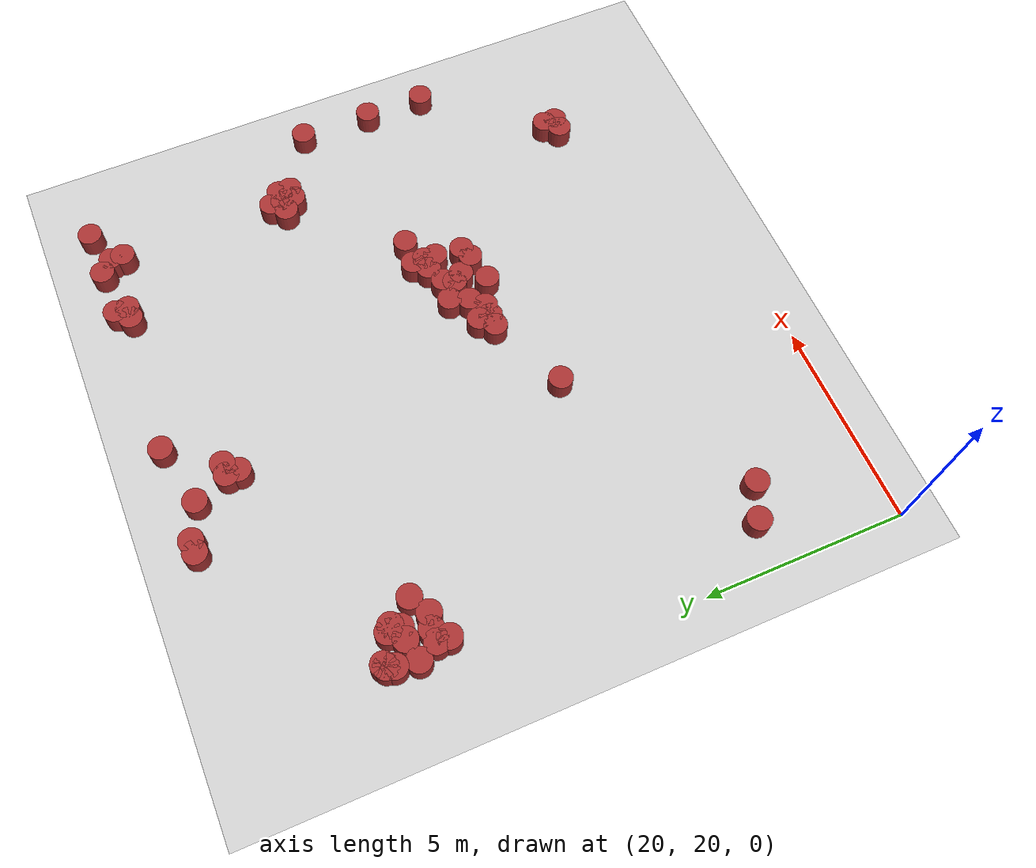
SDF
<sdf version="1.6">
 <world name="default">
  <model name="ground_plane">
   <static>1</static>
   <link name="link">
    <collision name="collision">
     <geometry><plane><normal>0 0 1</normal><size>100 100</size></plane></geometry>
     <surface><friction><ode><mu>100</mu><mu2>50</mu2></ode></friction></surface>
    </collision>
    <visual name="visual">
     <cast_shadows>0</cast_shadows>
     <geometry><plane><normal>0 0 1</normal><size>100 100</size></plane></geometry>
     <material>
      <script><uri>file://media/materials/scripts/gazebo.material</uri><name>Gazebo/Grey</name></script>
     </material>
    </visual>
   </link>
  </model>
  <model name="unit_cylinder_172">
   <static>1</static>
   <pose>22.4428 31.086 0 0 -0 0</pose>
   <link name="link">
    <inertial>
     <mass>1</mass>
     <inertia><ixx>0.145833</ixx><ixy>0</ixy><ixz>0</ixz><iyy>0.145833</iyy><iyz>0</iyz><izz>0.125</izz></inertia>
    </inertial>
    <collision name="collision">
     <geometry><cylinder><radius>0.3</radius><length>1</length></cylinder></geometry>
    </collision>
    <visual name="visual">
     <geometry><cylinder><radius>0.3</radius><length>1</length></cylinder></geometry>
     <material><ambient>0.648 0.192 0.192 1</ambient><diffuse>0.648 0.192 0.192 1</diffuse></material>
     <material>
      <script><name>Gazebo/Grey</name><uri>file://media/materials/scripts/gazebo.material</uri></script>
     </material>
    </visual>
   </link>
  </model>
  <model name="unit_cylinder_175">
   <static>1</static>
   <pose>26.3626 34.7436 0 0 -0 0</pose>
   <link name="link">
    <inertial>
     <mass>1</mass>
     <inertia><ixx>0.145833</ixx><ixy>0</ixy><ixz>0</ixz><iyy>0.145833</iyy><iyz>0</iyz><izz>0.125</izz></inertia>
    </inertial>
    <collision name="collision">
     <geometry><cylinder><radius>0.3</radius><length>1</length></cylinder></geometry>
    </collision>
    <visual name="visual">
     <geometry><cylinder><radius>0.3</radius><length>1</length></cylinder></geometry>
     <material><ambient>0.648 0.192 0.192 1</ambient><diffuse>0.648 0.192 0.192 1</diffuse></material>
     <material>
      <script><name>Gazebo/Grey</name><uri>file://media/materials/scripts/gazebo.material</uri></script>
     </material>
    </visual>
   </link>
  </model>
  <model name="unit_cylinder_176">
   <static>1</static>
   <pose>21.0748 23.1889 0 0 -0 0</pose>
   <link name="link">
    <inertial>
     <mass>1</mass>
     <inertia><ixx>0.145833</ixx><ixy>0</ixy><ixz>0</ixz><iyy>0.145833</iyy><iyz>0</iyz><izz>0.125</izz></inertia>
    </inertial>
    <collision name="collision">
     <geometry><cylinder><radius>0.3</radius><length>1</length></cylinder></geometry>
    </collision>
    <visual name="visual">
     <geometry><cylinder><radius>0.3</radius><length>1</length></cylinder></geometry>
     <material><ambient>0.648 0.192 0.192 1</ambient><diffuse>0.648 0.192 0.192 1</diffuse></material>
     <material>
      <script><name>Gazebo/Grey</name><uri>file://media/materials/scripts/gazebo.material</uri></script>
     </material>
    </visual>
   </link>
  </model>
  <model name="unit_cylinder_276">
   <static>1</static>
   <pose>21.3 30.6 0 0 -0 0</pose>
   <link name="link">
    <inertial>
     <mass>1</mass>
     <inertia><ixx>0.145833</ixx><ixy>0</ixy><ixz>0</ixz><iyy>0.145833</iyy><iyz>0</iyz><izz>0.125</izz></inertia>
    </inertial>
    <collision name="collision">
     <geometry><cylinder><radius>0.3</radius><length>1</length></cylinder></geometry>
    </collision>
    <visual name="visual">
     <geometry><cylinder><radius>0.3</radius><length>1</length></cylinder></geometry>
     <material><ambient>0.648 0.192 0.192 1</ambient><diffuse>0.648 0.192 0.192 1</diffuse></material>
     <material>
      <script><name>Gazebo/Grey</name><uri>file://media/materials/scripts/gazebo.material</uri></script>
     </material>
    </visual>
   </link>
  </model>
  <model name="unit_cylinder_277">
   <static>1</static>
   <pose>21.3 30.9 0 0 -0 0</pose>
   <link name="link">
    <inertial>
     <mass>1</mass>
     <inertia><ixx>0.145833</ixx><ixy>0</ixy><ixz>0</ixz><iyy>0.145833</iyy><iyz>0</iyz><izz>0.125</izz></inertia>
    </inertial>
    <collision name="collision">
     <geometry><cylinder><radius>0.3</radius><length>1</length></cylinder></geometry>
    </collision>
    <visual name="visual">
     <geometry><cylinder><radius>0.3</radius><length>1</length></cylinder></geometry>
     <material><ambient>0.648 0.192 0.192 1</ambient><diffuse>0.648 0.192 0.192 1</diffuse></material>
     <material>
      <script><name>Gazebo/Grey</name><uri>file://media/materials/scripts/gazebo.material</uri></script>
     </material>
    </visual>
   </link>
  </model>
  <model name="unit_cylinder_279">
   <static>1</static>
   <pose>21.2164 32.0962 0 0 -0 0</pose>
   <link name="link">
    <inertial>
     <mass>1</mass>
     <inertia><ixx>0.145833</ixx><ixy>0</ixy><ixz>0</ixz><iyy>0.145833</iyy><iyz>0</iyz><izz>0.125</izz></inertia>
    </inertial>
    <collision name="collision">
     <geometry><cylinder><radius>0.3</radius><length>1</length></cylinder></geometry>
    </collision>
    <visual name="visual">
     <geometry><cylinder><radius>0.3</radius><length>1</length></cylinder></geometry>
     <material><ambient>0.648 0.192 0.192 1</ambient><diffuse>0.648 0.192 0.192 1</diffuse></material>
     <material>
      <script><name>Gazebo/Grey</name><uri>file://media/materials/scripts/gazebo.material</uri></script>
     </material>
    </visual>
   </link>
  </model>
  <model name="unit_cylinder_280">
   <static>1</static>
   <pose>21.0788 31.3877 0 0 -0 0</pose>
   <link name="link">
    <inertial>
     <mass>1</mass>
     <inertia><ixx>0.145833</ixx><ixy>0</ixy><ixz>0</ixz><iyy>0.145833</iyy><iyz>0</iyz><izz>0.125</izz></inertia>
    </inertial>
    <collision name="collision">
     <geometry><cylinder><radius>0.3</radius><length>1</length></cylinder></geometry>
    </collision>
    <visual name="visual">
     <geometry><cylinder><radius>0.3</radius><length>1</length></cylinder></geometry>
     <material><ambient>0.648 0.192 0.192 1</ambient><diffuse>0.648 0.192 0.192 1</diffuse></material>
     <material>
      <script><name>Gazebo/Grey</name><uri>file://media/materials/scripts/gazebo.material</uri></script>
     </material>
    </visual>
   </link>
  </model>
  <model name="unit_cylinder_281">
   <static>1</static>
   <pose>21.6 30.9 0 0 -0 0</pose>
   <link name="link">
    <inertial>
     <mass>1</mass>
     <inertia><ixx>0.145833</ixx><ixy>0</ixy><ixz>0</ixz><iyy>0.145833</iyy><iyz>0</iyz><izz>0.125</izz></inertia>
    </inertial>
    <collision name="collision">
     <geometry><cylinder><radius>0.3</radius><length>1</length></cylinder></geometry>
    </collision>
    <visual name="visual">
     <geometry><cylinder><radius>0.3</radius><length>1</length></cylinder></geometry>
     <material><ambient>0.648 0.192 0.192 1</ambient><diffuse>0.648 0.192 0.192 1</diffuse></material>
     <material>
      <script><name>Gazebo/Grey</name><uri>file://media/materials/scripts/gazebo.material</uri></script>
     </material>
    </visual>
   </link>
  </model>
  <model name="unit_cylinder_282">
   <static>1</static>
   <pose>21.6 31.5 0 0 -0 0</pose>
   <link name="link">
    <inertial>
     <mass>1</mass>
     <inertia><ixx>0.145833</ixx><ixy>0</ixy><ixz>0</ixz><iyy>0.145833</iyy><iyz>0</iyz><izz>0.125</izz></inertia>
    </inertial>
    <collision name="collision">
     <geometry><cylinder><radius>0.3</radius><length>1</length></cylinder></geometry>
    </collision>
    <visual name="visual">
     <geometry><cylinder><radius>0.3</radius><length>1</length></cylinder></geometry>
     <material><ambient>0.648 0.192 0.192 1</ambient><diffuse>0.648 0.192 0.192 1</diffuse></material>
     <material>
      <script><name>Gazebo/Grey</name><uri>file://media/materials/scripts/gazebo.material</uri></script>
     </material>
    </visual>
   </link>
  </model>
  <model name="unit_cylinder_284">
   <static>1</static>
   <pose>21.9 22.8 0 0 -0 0</pose>
   <link name="link">
    <inertial>
     <mass>1</mass>
     <inertia><ixx>0.145833</ixx><ixy>0</ixy><ixz>0</ixz><iyy>0.145833</iyy><iyz>0</iyz><izz>0.125</izz></inertia>
    </inertial>
    <collision name="collision">
     <geometry><cylinder><radius>0.3</radius><length>1</length></cylinder></geometry>
    </collision>
    <visual name="visual">
     <geometry><cylinder><radius>0.3</radius><length>1</length></cylinder></geometry>
     <material><ambient>0.648 0.192 0.192 1</ambient><diffuse>0.648 0.192 0.192 1</diffuse></material>
     <material>
      <script><name>Gazebo/Grey</name><uri>file://media/materials/scripts/gazebo.material</uri></script>
     </material>
    </visual>
   </link>
  </model>
  <model name="unit_cylinder_285">
   <static>1</static>
   <pose>21.9562 30.8161 0 0 -0 0</pose>
   <link name="link">
    <inertial>
     <mass>1</mass>
     <inertia><ixx>0.145833</ixx><ixy>0</ixy><ixz>0</ixz><iyy>0.145833</iyy><iyz>0</iyz><izz>0.125</izz></inertia>
    </inertial>
    <collision name="collision">
     <geometry><cylinder><radius>0.3</radius><length>1</length></cylinder></geometry>
    </collision>
    <visual name="visual">
     <geometry><cylinder><radius>0.3</radius><length>1</length></cylinder></geometry>
     <material><ambient>0.648 0.192 0.192 1</ambient><diffuse>0.648 0.192 0.192 1</diffuse></material>
     <material>
      <script><name>Gazebo/Grey</name><uri>file://media/materials/scripts/gazebo.material</uri></script>
     </material>
    </visual>
   </link>
  </model>
  <model name="unit_cylinder_286">
   <static>1</static>
   <pose>21.9 31.5 0 0 -0 0</pose>
   <link name="link">
    <inertial>
     <mass>1</mass>
     <inertia><ixx>0.145833</ixx><ixy>0</ixy><ixz>0</ixz><iyy>0.145833</iyy><iyz>0</iyz><izz>0.125</izz></inertia>
    </inertial>
    <collision name="collision">
     <geometry><cylinder><radius>0.3</radius><length>1</length></cylinder></geometry>
    </collision>
    <visual name="visual">
     <geometry><cylinder><radius>0.3</radius><length>1</length></cylinder></geometry>
     <material><ambient>0.648 0.192 0.192 1</ambient><diffuse>0.648 0.192 0.192 1</diffuse></material>
     <material>
      <script><name>Gazebo/Grey</name><uri>file://media/materials/scripts/gazebo.material</uri></script>
     </material>
    </visual>
   </link>
  </model>
  <model name="unit_cylinder_287">
   <static>1</static>
   <pose>21.9 31.8 0 0 -0 0</pose>
   <link name="link">
    <inertial>
     <mass>1</mass>
     <inertia><ixx>0.145833</ixx><ixy>0</ixy><ixz>0</ixz><iyy>0.145833</iyy><iyz>0</iyz><izz>0.125</izz></inertia>
    </inertial>
    <collision name="collision">
     <geometry><cylinder><radius>0.3</radius><length>1</length></cylinder></geometry>
    </collision>
    <visual name="visual">
     <geometry><cylinder><radius>0.3</radius><length>1</length></cylinder></geometry>
     <material><ambient>0.648 0.192 0.192 1</ambient><diffuse>0.648 0.192 0.192 1</diffuse></material>
     <material>
      <script><name>Gazebo/Grey</name><uri>file://media/materials/scripts/gazebo.material</uri></script>
     </material>
    </visual>
   </link>
  </model>
  <model name="unit_cylinder_290">
   <static>1</static>
   <pose>21.2837 32.1368 0 0 -0 0</pose>
   <link name="link">
    <inertial>
     <mass>1</mass>
     <inertia><ixx>0.145833</ixx><ixy>0</ixy><ixz>0</ixz><iyy>0.145833</iyy><iyz>0</iyz><izz>0.125</izz></inertia>
    </inertial>
    <collision name="collision">
     <geometry><cylinder><radius>0.3</radius><length>1</length></cylinder></geometry>
    </collision>
    <visual name="visual">
     <geometry><cylinder><radius>0.3</radius><length>1</length></cylinder></geometry>
     <material><ambient>0.648 0.192 0.192 1</ambient><diffuse>0.648 0.192 0.192 1</diffuse></material>
     <material>
      <script><name>Gazebo/Grey</name><uri>file://media/materials/scripts/gazebo.material</uri></script>
     </material>
    </visual>
   </link>
  </model>
  <model name="unit_cylinder_297">
   <static>1</static>
   <pose>22.0157 31.6974 0 0 -0 0</pose>
   <link name="link">
    <inertial>
     <mass>1</mass>
     <inertia><ixx>0.145833</ixx><ixy>0</ixy><ixz>0</ixz><iyy>0.145833</iyy><iyz>0</iyz><izz>0.125</izz></inertia>
    </inertial>
    <collision name="collision">
     <geometry><cylinder><radius>0.3</radius><length>1</length></cylinder></geometry>
    </collision>
    <visual name="visual">
     <geometry><cylinder><radius>0.3</radius><length>1</length></cylinder></geometry>
     <material><ambient>0.648 0.192 0.192 1</ambient><diffuse>0.648 0.192 0.192 1</diffuse></material>
     <material>
      <script><name>Gazebo/Grey</name><uri>file://media/materials/scripts/gazebo.material</uri></script>
     </material>
    </visual>
   </link>
  </model>
  <model name="unit_cylinder_298">
   <static>1</static>
   <pose>21.1555 31.9198 0 0 -0 0</pose>
   <link name="link">
    <inertial>
     <mass>1</mass>
     <inertia><ixx>0.145833</ixx><ixy>0</ixy><ixz>0</ixz><iyy>0.145833</iyy><iyz>0</iyz><izz>0.125</izz></inertia>
    </inertial>
    <collision name="collision">
     <geometry><cylinder><radius>0.3</radius><length>1</length></cylinder></geometry>
    </collision>
    <visual name="visual">
     <geometry><cylinder><radius>0.3</radius><length>1</length></cylinder></geometry>
     <material><ambient>0.648 0.192 0.192 1</ambient><diffuse>0.648 0.192 0.192 1</diffuse></material>
     <material>
      <script><name>Gazebo/Grey</name><uri>file://media/materials/scripts/gazebo.material</uri></script>
     </material>
    </visual>
   </link>
  </model>
  <model name="unit_cylinder_322">
   <static>1</static>
   <pose>25.2 35.1 0 0 -0 0</pose>
   <link name="link">
    <inertial>
     <mass>1</mass>
     <inertia><ixx>0.145833</ixx><ixy>0</ixy><ixz>0</ixz><iyy>0.145833</iyy><iyz>0</iyz><izz>0.125</izz></inertia>
    </inertial>
    <collision name="collision">
     <geometry><cylinder><radius>0.3</radius><length>1</length></cylinder></geometry>
    </collision>
    <visual name="visual">
     <geometry><cylinder><radius>0.3</radius><length>1</length></cylinder></geometry>
     <material><ambient>0.648 0.192 0.192 1</ambient><diffuse>0.648 0.192 0.192 1</diffuse></material>
     <material>
      <script><name>Gazebo/Grey</name><uri>file://media/materials/scripts/gazebo.material</uri></script>
     </material>
    </visual>
   </link>
  </model>
  <model name="unit_cylinder_332">
   <static>1</static>
   <pose>25.5 35.1 0 0 -0 0</pose>
   <link name="link">
    <inertial>
     <mass>1</mass>
     <inertia><ixx>0.145833</ixx><ixy>0</ixy><ixz>0</ixz><iyy>0.145833</iyy><iyz>0</iyz><izz>0.125</izz></inertia>
    </inertial>
    <collision name="collision">
     <geometry><cylinder><radius>0.3</radius><length>1</length></cylinder></geometry>
    </collision>
    <visual name="visual">
     <geometry><cylinder><radius>0.3</radius><length>1</length></cylinder></geometry>
     <material><ambient>0.648 0.192 0.192 1</ambient><diffuse>0.648 0.192 0.192 1</diffuse></material>
     <material>
      <script><name>Gazebo/Grey</name><uri>file://media/materials/scripts/gazebo.material</uri></script>
     </material>
    </visual>
   </link>
  </model>
  <model name="unit_cylinder_356">
   <static>1</static>
   <pose>26.7 33.6 0 0 -0 0</pose>
   <link name="link">
    <inertial>
     <mass>1</mass>
     <inertia><ixx>0.145833</ixx><ixy>0</ixy><ixz>0</ixz><iyy>0.145833</iyy><iyz>0</iyz><izz>0.125</izz></inertia>
    </inertial>
    <collision name="collision">
     <geometry><cylinder><radius>0.3</radius><length>1</length></cylinder></geometry>
    </collision>
    <visual name="visual">
     <geometry><cylinder><radius>0.3</radius><length>1</length></cylinder></geometry>
     <material><ambient>0.648 0.192 0.192 1</ambient><diffuse>0.648 0.192 0.192 1</diffuse></material>
     <material>
      <script><name>Gazebo/Grey</name><uri>file://media/materials/scripts/gazebo.material</uri></script>
     </material>
    </visual>
   </link>
  </model>
  <model name="unit_cylinder_357">
   <static>1</static>
   <pose>26.7 33.9 0 0 -0 0</pose>
   <link name="link">
    <inertial>
     <mass>1</mass>
     <inertia><ixx>0.145833</ixx><ixy>0</ixy><ixz>0</ixz><iyy>0.145833</iyy><iyz>0</iyz><izz>0.125</izz></inertia>
    </inertial>
    <collision name="collision">
     <geometry><cylinder><radius>0.3</radius><length>1</length></cylinder></geometry>
    </collision>
    <visual name="visual">
     <geometry><cylinder><radius>0.3</radius><length>1</length></cylinder></geometry>
     <material><ambient>0.648 0.192 0.192 1</ambient><diffuse>0.648 0.192 0.192 1</diffuse></material>
     <material>
      <script><name>Gazebo/Grey</name><uri>file://media/materials/scripts/gazebo.material</uri></script>
     </material>
    </visual>
   </link>
  </model>
  <model name="unit_cylinder_361">
   <static>1</static>
   <pose>27 33.9 0 0 -0 0</pose>
   <link name="link">
    <inertial>
     <mass>1</mass>
     <inertia><ixx>0.145833</ixx><ixy>0</ixy><ixz>0</ixz><iyy>0.145833</iyy><iyz>0</iyz><izz>0.125</izz></inertia>
    </inertial>
    <collision name="collision">
     <geometry><cylinder><radius>0.3</radius><length>1</length></cylinder></geometry>
    </collision>
    <visual name="visual">
     <geometry><cylinder><radius>0.3</radius><length>1</length></cylinder></geometry>
     <material><ambient>0.648 0.192 0.192 1</ambient><diffuse>0.648 0.192 0.192 1</diffuse></material>
     <material>
      <script><name>Gazebo/Grey</name><uri>file://media/materials/scripts/gazebo.material</uri></script>
     </material>
    </visual>
   </link>
  </model>
  <model name="unit_cylinder_366">
   <static>1</static>
   <pose>27.9 26.7 0 0 -0 0</pose>
   <link name="link">
    <inertial>
     <mass>1</mass>
     <inertia><ixx>0.145833</ixx><ixy>0</ixy><ixz>0</ixz><iyy>0.145833</iyy><iyz>0</iyz><izz>0.125</izz></inertia>
    </inertial>
    <collision name="collision">
     <geometry><cylinder><radius>0.3</radius><length>1</length></cylinder></geometry>
    </collision>
    <visual name="visual">
     <geometry><cylinder><radius>0.3</radius><length>1</length></cylinder></geometry>
     <material><ambient>0.648 0.192 0.192 1</ambient><diffuse>0.648 0.192 0.192 1</diffuse></material>
     <material>
      <script><name>Gazebo/Grey</name><uri>file://media/materials/scripts/gazebo.material</uri></script>
     </material>
    </visual>
   </link>
  </model>
  <model name="unit_cylinder_367">
   <static>1</static>
   <pose>27.9 35.1 0 0 -0 0</pose>
   <link name="link">
    <inertial>
     <mass>1</mass>
     <inertia><ixx>0.145833</ixx><ixy>0</ixy><ixz>0</ixz><iyy>0.145833</iyy><iyz>0</iyz><izz>0.125</izz></inertia>
    </inertial>
    <collision name="collision">
     <geometry><cylinder><radius>0.3</radius><length>1</length></cylinder></geometry>
    </collision>
    <visual name="visual">
     <geometry><cylinder><radius>0.3</radius><length>1</length></cylinder></geometry>
     <material><ambient>0.648 0.192 0.192 1</ambient><diffuse>0.648 0.192 0.192 1</diffuse></material>
     <material>
      <script><name>Gazebo/Grey</name><uri>file://media/materials/scripts/gazebo.material</uri></script>
     </material>
    </visual>
   </link>
  </model>
  <model name="unit_cylinder_370">
   <static>1</static>
   <pose>28.2 26.7 0 0 -0 0</pose>
   <link name="link">
    <inertial>
     <mass>1</mass>
     <inertia><ixx>0.145833</ixx><ixy>0</ixy><ixz>0</ixz><iyy>0.145833</iyy><iyz>0</iyz><izz>0.125</izz></inertia>
    </inertial>
    <collision name="collision">
     <geometry><cylinder><radius>0.3</radius><length>1</length></cylinder></geometry>
    </collision>
    <visual name="visual">
     <geometry><cylinder><radius>0.3</radius><length>1</length></cylinder></geometry>
     <material><ambient>0.648 0.192 0.192 1</ambient><diffuse>0.648 0.192 0.192 1</diffuse></material>
     <material>
      <script><name>Gazebo/Grey</name><uri>file://media/materials/scripts/gazebo.material</uri></script>
     </material>
    </visual>
   </link>
  </model>
  <model name="unit_cylinder_371">
   <static>1</static>
   <pose>28.2 27 0 0 -0 0</pose>
   <link name="link">
    <inertial>
     <mass>1</mass>
     <inertia><ixx>0.145833</ixx><ixy>0</ixy><ixz>0</ixz><iyy>0.145833</iyy><iyz>0</iyz><izz>0.125</izz></inertia>
    </inertial>
    <collision name="collision">
     <geometry><cylinder><radius>0.3</radius><length>1</length></cylinder></geometry>
    </collision>
    <visual name="visual">
     <geometry><cylinder><radius>0.3</radius><length>1</length></cylinder></geometry>
     <material><ambient>0.648 0.192 0.192 1</ambient><diffuse>0.648 0.192 0.192 1</diffuse></material>
     <material>
      <script><name>Gazebo/Grey</name><uri>file://media/materials/scripts/gazebo.material</uri></script>
     </material>
    </visual>
   </link>
  </model>
  <model name="unit_cylinder_374">
   <static>1</static>
   <pose>28.5 26.7 0 0 -0 0</pose>
   <link name="link">
    <inertial>
     <mass>1</mass>
     <inertia><ixx>0.145833</ixx><ixy>0</ixy><ixz>0</ixz><iyy>0.145833</iyy><iyz>0</iyz><izz>0.125</izz></inertia>
    </inertial>
    <collision name="collision">
     <geometry><cylinder><radius>0.3</radius><length>1</length></cylinder></geometry>
    </collision>
    <visual name="visual">
     <geometry><cylinder><radius>0.3</radius><length>1</length></cylinder></geometry>
     <material><ambient>0.648 0.192 0.192 1</ambient><diffuse>0.648 0.192 0.192 1</diffuse></material>
     <material>
      <script><name>Gazebo/Grey</name><uri>file://media/materials/scripts/gazebo.material</uri></script>
     </material>
    </visual>
   </link>
  </model>
  <model name="unit_cylinder_382">
   <static>1</static>
   <pose>28.8 27 0 0 -0 0</pose>
   <link name="link">
    <inertial>
     <mass>1</mass>
     <inertia><ixx>0.145833</ixx><ixy>0</ixy><ixz>0</ixz><iyy>0.145833</iyy><iyz>0</iyz><izz>0.125</izz></inertia>
    </inertial>
    <collision name="collision">
     <geometry><cylinder><radius>0.3</radius><length>1</length></cylinder></geometry>
    </collision>
    <visual name="visual">
     <geometry><cylinder><radius>0.3</radius><length>1</length></cylinder></geometry>
     <material><ambient>0.648 0.192 0.192 1</ambient><diffuse>0.648 0.192 0.192 1</diffuse></material>
     <material>
      <script><name>Gazebo/Grey</name><uri>file://media/materials/scripts/gazebo.material</uri></script>
     </material>
    </visual>
   </link>
  </model>
  <model name="unit_cylinder_398">
   <static>1</static>
   <pose>29.3977 27.1492 0 0 -0 0</pose>
   <link name="link">
    <inertial>
     <mass>1</mass>
     <inertia><ixx>0.145833</ixx><ixy>0</ixy><ixz>0</ixz><iyy>0.145833</iyy><iyz>0</iyz><izz>0.125</izz></inertia>
    </inertial>
    <collision name="collision">
     <geometry><cylinder><radius>0.3</radius><length>1</length></cylinder></geometry>
    </collision>
    <visual name="visual">
     <geometry><cylinder><radius>0.3</radius><length>1</length></cylinder></geometry>
     <material><ambient>0.648 0.192 0.192 1</ambient><diffuse>0.648 0.192 0.192 1</diffuse></material>
     <material>
      <script><name>Gazebo/Grey</name><uri>file://media/materials/scripts/gazebo.material</uri></script>
     </material>
    </visual>
   </link>
  </model>
  <model name="unit_cylinder_399">
   <static>1</static>
   <pose>30 27.6 0 0 -0 0</pose>
   <link name="link">
    <inertial>
     <mass>1</mass>
     <inertia><ixx>0.145833</ixx><ixy>0</ixy><ixz>0</ixz><iyy>0.145833</iyy><iyz>0</iyz><izz>0.125</izz></inertia>
    </inertial>
    <collision name="collision">
     <geometry><cylinder><radius>0.3</radius><length>1</length></cylinder></geometry>
    </collision>
    <visual name="visual">
     <geometry><cylinder><radius>0.3</radius><length>1</length></cylinder></geometry>
     <material><ambient>0.648 0.192 0.192 1</ambient><diffuse>0.648 0.192 0.192 1</diffuse></material>
     <material>
      <script><name>Gazebo/Grey</name><uri>file://media/materials/scripts/gazebo.material</uri></script>
     </material>
    </visual>
   </link>
  </model>
  <model name="unit_cylinder_400">
   <static>1</static>
   <pose>29.5677 26.9112 0 0 -0 0</pose>
   <link name="link">
    <inertial>
     <mass>1</mass>
     <inertia><ixx>0.145833</ixx><ixy>0</ixy><ixz>0</ixz><iyy>0.145833</iyy><iyz>0</iyz><izz>0.125</izz></inertia>
    </inertial>
    <collision name="collision">
     <geometry><cylinder><radius>0.3</radius><length>1</length></cylinder></geometry>
    </collision>
    <visual name="visual">
     <geometry><cylinder><radius>0.3</radius><length>1</length></cylinder></geometry>
     <material><ambient>0.648 0.192 0.192 1</ambient><diffuse>0.648 0.192 0.192 1</diffuse></material>
     <material>
      <script><name>Gazebo/Grey</name><uri>file://media/materials/scripts/gazebo.material</uri></script>
     </material>
    </visual>
   </link>
  </model>
  <model name="unit_cylinder_401">
   <static>1</static>
   <pose>30.3 27.3 0 0 -0 0</pose>
   <link name="link">
    <inertial>
     <mass>1</mass>
     <inertia><ixx>0.145833</ixx><ixy>0</ixy><ixz>0</ixz><iyy>0.145833</iyy><iyz>0</iyz><izz>0.125</izz></inertia>
    </inertial>
    <collision name="collision">
     <geometry><cylinder><radius>0.3</radius><length>1</length></cylinder></geometry>
    </collision>
    <visual name="visual">
     <geometry><cylinder><radius>0.3</radius><length>1</length></cylinder></geometry>
     <material><ambient>0.648 0.192 0.192 1</ambient><diffuse>0.648 0.192 0.192 1</diffuse></material>
     <material>
      <script><name>Gazebo/Grey</name><uri>file://media/materials/scripts/gazebo.material</uri></script>
     </material>
    </visual>
   </link>
  </model>
  <model name="unit_cylinder_402">
   <static>1</static>
   <pose>30.3 27.6 0 0 -0 0</pose>
   <link name="link">
    <inertial>
     <mass>1</mass>
     <inertia><ixx>0.145833</ixx><ixy>0</ixy><ixz>0</ixz><iyy>0.145833</iyy><iyz>0</iyz><izz>0.125</izz></inertia>
    </inertial>
    <collision name="collision">
     <geometry><cylinder><radius>0.3</radius><length>1</length></cylinder></geometry>
    </collision>
    <visual name="visual">
     <geometry><cylinder><radius>0.3</radius><length>1</length></cylinder></geometry>
     <material><ambient>0.648 0.192 0.192 1</ambient><diffuse>0.648 0.192 0.192 1</diffuse></material>
     <material>
      <script><name>Gazebo/Grey</name><uri>file://media/materials/scripts/gazebo.material</uri></script>
     </material>
    </visual>
   </link>
  </model>
  <model name="unit_cylinder_403">
   <static>1</static>
   <pose>30.3 27.9 0 0 -0 0</pose>
   <link name="link">
    <inertial>
     <mass>1</mass>
     <inertia><ixx>0.145833</ixx><ixy>0</ixy><ixz>0</ixz><iyy>0.145833</iyy><iyz>0</iyz><izz>0.125</izz></inertia>
    </inertial>
    <collision name="collision">
     <geometry><cylinder><radius>0.3</radius><length>1</length></cylinder></geometry>
    </collision>
    <visual name="visual">
     <geometry><cylinder><radius>0.3</radius><length>1</length></cylinder></geometry>
     <material><ambient>0.648 0.192 0.192 1</ambient><diffuse>0.648 0.192 0.192 1</diffuse></material>
     <material>
      <script><name>Gazebo/Grey</name><uri>file://media/materials/scripts/gazebo.material</uri></script>
     </material>
    </visual>
   </link>
  </model>
  <model name="unit_cylinder_407">
   <static>1</static>
   <pose>30.228 26.6253 0 0 -0 0</pose>
   <link name="link">
    <inertial>
     <mass>1</mass>
     <inertia><ixx>0.145833</ixx><ixy>0</ixy><ixz>0</ixz><iyy>0.145833</iyy><iyz>0</iyz><izz>0.125</izz></inertia>
    </inertial>
    <collision name="collision">
     <geometry><cylinder><radius>0.3</radius><length>1</length></cylinder></geometry>
    </collision>
    <visual name="visual">
     <geometry><cylinder><radius>0.3</radius><length>1</length></cylinder></geometry>
     <material><ambient>0.648 0.192 0.192 1</ambient><diffuse>0.648 0.192 0.192 1</diffuse></material>
     <material>
      <script><name>Gazebo/Grey</name><uri>file://media/materials/scripts/gazebo.material</uri></script>
     </material>
    </visual>
   </link>
  </model>
  <model name="unit_cylinder_408">
   <static>1</static>
   <pose>29.5468 27.3961 0 0 -0 0</pose>
   <link name="link">
    <inertial>
     <mass>1</mass>
     <inertia><ixx>0.145833</ixx><ixy>0</ixy><ixz>0</ixz><iyy>0.145833</iyy><iyz>0</iyz><izz>0.125</izz></inertia>
    </inertial>
    <collision name="collision">
     <geometry><cylinder><radius>0.3</radius><length>1</length></cylinder></geometry>
    </collision>
    <visual name="visual">
     <geometry><cylinder><radius>0.3</radius><length>1</length></cylinder></geometry>
     <material><ambient>0.648 0.192 0.192 1</ambient><diffuse>0.648 0.192 0.192 1</diffuse></material>
     <material>
      <script><name>Gazebo/Grey</name><uri>file://media/materials/scripts/gazebo.material</uri></script>
     </material>
    </visual>
   </link>
  </model>
  <model name="unit_cylinder_413">
   <static>1</static>
   <pose>25.9867 25.8316 0 0 -0 0</pose>
   <link name="link">
    <inertial>
     <mass>1</mass>
     <inertia><ixx>0.145833</ixx><ixy>0</ixy><ixz>0</ixz><iyy>0.145833</iyy><iyz>0</iyz><izz>0.125</izz></inertia>
    </inertial>
    <collision name="collision">
     <geometry><cylinder><radius>0.3</radius><length>1</length></cylinder></geometry>
    </collision>
    <visual name="visual">
     <geometry><cylinder><radius>0.3</radius><length>1</length></cylinder></geometry>
     <material><ambient>0.648 0.192 0.192 1</ambient><diffuse>0.648 0.192 0.192 1</diffuse></material>
     <material>
      <script><name>Gazebo/Grey</name><uri>file://media/materials/scripts/gazebo.material</uri></script>
     </material>
    </visual>
   </link>
  </model>
  <model name="unit_cylinder_414">
   <static>1</static>
   <pose>30.9612 27.8456 0 0 -0 0</pose>
   <link name="link">
    <inertial>
     <mass>1</mass>
     <inertia><ixx>0.145833</ixx><ixy>0</ixy><ixz>0</ixz><iyy>0.145833</iyy><iyz>0</iyz><izz>0.125</izz></inertia>
    </inertial>
    <collision name="collision">
     <geometry><cylinder><radius>0.3</radius><length>1</length></cylinder></geometry>
    </collision>
    <visual name="visual">
     <geometry><cylinder><radius>0.3</radius><length>1</length></cylinder></geometry>
     <material><ambient>0.648 0.192 0.192 1</ambient><diffuse>0.648 0.192 0.192 1</diffuse></material>
     <material>
      <script><name>Gazebo/Grey</name><uri>file://media/materials/scripts/gazebo.material</uri></script>
     </material>
    </visual>
   </link>
  </model>
  <model name="unit_cylinder_418">
   <static>1</static>
   <pose>29.2078 26.3589 0 0 -0 0</pose>
   <link name="link">
    <inertial>
     <mass>1</mass>
     <inertia><ixx>0.145833</ixx><ixy>0</ixy><ixz>0</ixz><iyy>0.145833</iyy><iyz>0</iyz><izz>0.125</izz></inertia>
    </inertial>
    <collision name="collision">
     <geometry><cylinder><radius>0.3</radius><length>1</length></cylinder></geometry>
    </collision>
    <visual name="visual">
     <geometry><cylinder><radius>0.3</radius><length>1</length></cylinder></geometry>
     <material><ambient>0.648 0.192 0.192 1</ambient><diffuse>0.648 0.192 0.192 1</diffuse></material>
     <material>
      <script><name>Gazebo/Grey</name><uri>file://media/materials/scripts/gazebo.material</uri></script>
     </material>
    </visual>
   </link>
  </model>
  <model name="unit_cylinder_419">
   <static>1</static>
   <pose>28.985 27.4495 0 0 -0 0</pose>
   <link name="link">
    <inertial>
     <mass>1</mass>
     <inertia><ixx>0.145833</ixx><ixy>0</ixy><ixz>0</ixz><iyy>0.145833</iyy><iyz>0</iyz><izz>0.125</izz></inertia>
    </inertial>
    <collision name="collision">
     <geometry><cylinder><radius>0.3</radius><length>1</length></cylinder></geometry>
    </collision>
    <visual name="visual">
     <geometry><cylinder><radius>0.3</radius><length>1</length></cylinder></geometry>
     <material><ambient>0.648 0.192 0.192 1</ambient><diffuse>0.648 0.192 0.192 1</diffuse></material>
     <material>
      <script><name>Gazebo/Grey</name><uri>file://media/materials/scripts/gazebo.material</uri></script>
     </material>
    </visual>
   </link>
  </model>
  <model name="unit_cylinder_420">
   <static>1</static>
   <pose>31.5 34.8 0 0 -0 0</pose>
   <link name="link">
    <inertial>
     <mass>1</mass>
     <inertia><ixx>0.145833</ixx><ixy>0</ixy><ixz>0</ixz><iyy>0.145833</iyy><iyz>0</iyz><izz>0.125</izz></inertia>
    </inertial>
    <collision name="collision">
     <geometry><cylinder><radius>0.3</radius><length>1</length></cylinder></geometry>
    </collision>
    <visual name="visual">
     <geometry><cylinder><radius>0.3</radius><length>1</length></cylinder></geometry>
     <material><ambient>0.648 0.192 0.192 1</ambient><diffuse>0.648 0.192 0.192 1</diffuse></material>
     <material>
      <script><name>Gazebo/Grey</name><uri>file://media/materials/scripts/gazebo.material</uri></script>
     </material>
    </visual>
   </link>
  </model>
  <model name="unit_cylinder_423">
   <static>1</static>
   <pose>29.9379 26.5061 0 0 -0 0</pose>
   <link name="link">
    <inertial>
     <mass>1</mass>
     <inertia><ixx>0.145833</ixx><ixy>0</ixy><ixz>0</ixz><iyy>0.145833</iyy><iyz>0</iyz><izz>0.125</izz></inertia>
    </inertial>
    <collision name="collision">
     <geometry><cylinder><radius>0.3</radius><length>1</length></cylinder></geometry>
    </collision>
    <visual name="visual">
     <geometry><cylinder><radius>0.3</radius><length>1</length></cylinder></geometry>
     <material><ambient>0.648 0.192 0.192 1</ambient><diffuse>0.648 0.192 0.192 1</diffuse></material>
     <material>
      <script><name>Gazebo/Grey</name><uri>file://media/materials/scripts/gazebo.material</uri></script>
     </material>
    </visual>
   </link>
  </model>
  <model name="unit_cylinder_424">
   <static>1</static>
   <pose>31.8 34.8 0 0 -0 0</pose>
   <link name="link">
    <inertial>
     <mass>1</mass>
     <inertia><ixx>0.145833</ixx><ixy>0</ixy><ixz>0</ixz><iyy>0.145833</iyy><iyz>0</iyz><izz>0.125</izz></inertia>
    </inertial>
    <collision name="collision">
     <geometry><cylinder><radius>0.3</radius><length>1</length></cylinder></geometry>
    </collision>
    <visual name="visual">
     <geometry><cylinder><radius>0.3</radius><length>1</length></cylinder></geometry>
     <material><ambient>0.648 0.192 0.192 1</ambient><diffuse>0.648 0.192 0.192 1</diffuse></material>
     <material>
      <script><name>Gazebo/Grey</name><uri>file://media/materials/scripts/gazebo.material</uri></script>
     </material>
    </visual>
   </link>
  </model>
  <model name="unit_cylinder_425">
   <static>1</static>
   <pose>31.8 35.1 0 0 -0 0</pose>
   <link name="link">
    <inertial>
     <mass>1</mass>
     <inertia><ixx>0.145833</ixx><ixy>0</ixy><ixz>0</ixz><iyy>0.145833</iyy><iyz>0</iyz><izz>0.125</izz></inertia>
    </inertial>
    <collision name="collision">
     <geometry><cylinder><radius>0.3</radius><length>1</length></cylinder></geometry>
    </collision>
    <visual name="visual">
     <geometry><cylinder><radius>0.3</radius><length>1</length></cylinder></geometry>
     <material><ambient>0.648 0.192 0.192 1</ambient><diffuse>0.648 0.192 0.192 1</diffuse></material>
     <material>
      <script><name>Gazebo/Grey</name><uri>file://media/materials/scripts/gazebo.material</uri></script>
     </material>
    </visual>
   </link>
  </model>
  <model name="unit_cylinder_431">
   <static>1</static>
   <pose>32.7 22.8 0 0 -0 0</pose>
   <link name="link">
    <inertial>
     <mass>1</mass>
     <inertia><ixx>0.145833</ixx><ixy>0</ixy><ixz>0</ixz><iyy>0.145833</iyy><iyz>0</iyz><izz>0.125</izz></inertia>
    </inertial>
    <collision name="collision">
     <geometry><cylinder><radius>0.3</radius><length>1</length></cylinder></geometry>
    </collision>
    <visual name="visual">
     <geometry><cylinder><radius>0.3</radius><length>1</length></cylinder></geometry>
     <material><ambient>0.648 0.192 0.192 1</ambient><diffuse>0.648 0.192 0.192 1</diffuse></material>
     <material>
      <script><name>Gazebo/Grey</name><uri>file://media/materials/scripts/gazebo.material</uri></script>
     </material>
    </visual>
   </link>
  </model>
  <model name="unit_cylinder_433">
   <static>1</static>
   <pose>33 22.8 0 0 -0 0</pose>
   <link name="link">
    <inertial>
     <mass>1</mass>
     <inertia><ixx>0.145833</ixx><ixy>0</ixy><ixz>0</ixz><iyy>0.145833</iyy><iyz>0</iyz><izz>0.125</izz></inertia>
    </inertial>
    <collision name="collision">
     <geometry><cylinder><radius>0.3</radius><length>1</length></cylinder></geometry>
    </collision>
    <visual name="visual">
     <geometry><cylinder><radius>0.3</radius><length>1</length></cylinder></geometry>
     <material><ambient>0.648 0.192 0.192 1</ambient><diffuse>0.648 0.192 0.192 1</diffuse></material>
     <material>
      <script><name>Gazebo/Grey</name><uri>file://media/materials/scripts/gazebo.material</uri></script>
     </material>
    </visual>
   </link>
  </model>
  <model name="unit_cylinder_434">
   <static>1</static>
   <pose>33 23.1 0 0 -0 0</pose>
   <link name="link">
    <inertial>
     <mass>1</mass>
     <inertia><ixx>0.145833</ixx><ixy>0</ixy><ixz>0</ixz><iyy>0.145833</iyy><iyz>0</iyz><izz>0.125</izz></inertia>
    </inertial>
    <collision name="collision">
     <geometry><cylinder><radius>0.3</radius><length>1</length></cylinder></geometry>
    </collision>
    <visual name="visual">
     <geometry><cylinder><radius>0.3</radius><length>1</length></cylinder></geometry>
     <material><ambient>0.648 0.192 0.192 1</ambient><diffuse>0.648 0.192 0.192 1</diffuse></material>
     <material>
      <script><name>Gazebo/Grey</name><uri>file://media/materials/scripts/gazebo.material</uri></script>
     </material>
    </visual>
   </link>
  </model>
  <model name="unit_cylinder_435">
   <static>1</static>
   <pose>33 30.3 0 0 -0 0</pose>
   <link name="link">
    <inertial>
     <mass>1</mass>
     <inertia><ixx>0.145833</ixx><ixy>0</ixy><ixz>0</ixz><iyy>0.145833</iyy><iyz>0</iyz><izz>0.125</izz></inertia>
    </inertial>
    <collision name="collision">
     <geometry><cylinder><radius>0.3</radius><length>1</length></cylinder></geometry>
    </collision>
    <visual name="visual">
     <geometry><cylinder><radius>0.3</radius><length>1</length></cylinder></geometry>
     <material><ambient>0.648 0.192 0.192 1</ambient><diffuse>0.648 0.192 0.192 1</diffuse></material>
     <material>
      <script><name>Gazebo/Grey</name><uri>file://media/materials/scripts/gazebo.material</uri></script>
     </material>
    </visual>
   </link>
  </model>
  <model name="unit_cylinder_436">
   <static>1</static>
   <pose>33 35.1 0 0 -0 0</pose>
   <link name="link">
    <inertial>
     <mass>1</mass>
     <inertia><ixx>0.145833</ixx><ixy>0</ixy><ixz>0</ixz><iyy>0.145833</iyy><iyz>0</iyz><izz>0.125</izz></inertia>
    </inertial>
    <collision name="collision">
     <geometry><cylinder><radius>0.3</radius><length>1</length></cylinder></geometry>
    </collision>
    <visual name="visual">
     <geometry><cylinder><radius>0.3</radius><length>1</length></cylinder></geometry>
     <material><ambient>0.648 0.192 0.192 1</ambient><diffuse>0.648 0.192 0.192 1</diffuse></material>
     <material>
      <script><name>Gazebo/Grey</name><uri>file://media/materials/scripts/gazebo.material</uri></script>
     </material>
    </visual>
   </link>
  </model>
  <model name="unit_cylinder_439">
   <static>1</static>
   <pose>33.3 30 0 0 -0 0</pose>
   <link name="link">
    <inertial>
     <mass>1</mass>
     <inertia><ixx>0.145833</ixx><ixy>0</ixy><ixz>0</ixz><iyy>0.145833</iyy><iyz>0</iyz><izz>0.125</izz></inertia>
    </inertial>
    <collision name="collision">
     <geometry><cylinder><radius>0.3</radius><length>1</length></cylinder></geometry>
    </collision>
    <visual name="visual">
     <geometry><cylinder><radius>0.3</radius><length>1</length></cylinder></geometry>
     <material><ambient>0.648 0.192 0.192 1</ambient><diffuse>0.648 0.192 0.192 1</diffuse></material>
     <material>
      <script><name>Gazebo/Grey</name><uri>file://media/materials/scripts/gazebo.material</uri></script>
     </material>
    </visual>
   </link>
  </model>
  <model name="unit_cylinder_440">
   <static>1</static>
   <pose>33.3 30.3 0 0 -0 0</pose>
   <link name="link">
    <inertial>
     <mass>1</mass>
     <inertia><ixx>0.145833</ixx><ixy>0</ixy><ixz>0</ixz><iyy>0.145833</iyy><iyz>0</iyz><izz>0.125</izz></inertia>
    </inertial>
    <collision name="collision">
     <geometry><cylinder><radius>0.3</radius><length>1</length></cylinder></geometry>
    </collision>
    <visual name="visual">
     <geometry><cylinder><radius>0.3</radius><length>1</length></cylinder></geometry>
     <material><ambient>0.648 0.192 0.192 1</ambient><diffuse>0.648 0.192 0.192 1</diffuse></material>
     <material>
      <script><name>Gazebo/Grey</name><uri>file://media/materials/scripts/gazebo.material</uri></script>
     </material>
    </visual>
   </link>
  </model>
  <model name="unit_cylinder_441">
   <static>1</static>
   <pose>33.3 30.6 0 0 -0 0</pose>
   <link name="link">
    <inertial>
     <mass>1</mass>
     <inertia><ixx>0.145833</ixx><ixy>0</ixy><ixz>0</ixz><iyy>0.145833</iyy><iyz>0</iyz><izz>0.125</izz></inertia>
    </inertial>
    <collision name="collision">
     <geometry><cylinder><radius>0.3</radius><length>1</length></cylinder></geometry>
    </collision>
    <visual name="visual">
     <geometry><cylinder><radius>0.3</radius><length>1</length></cylinder></geometry>
     <material><ambient>0.648 0.192 0.192 1</ambient><diffuse>0.648 0.192 0.192 1</diffuse></material>
     <material>
      <script><name>Gazebo/Grey</name><uri>file://media/materials/scripts/gazebo.material</uri></script>
     </material>
    </visual>
   </link>
  </model>
  <model name="unit_cylinder_442">
   <static>1</static>
   <pose>33.3 34.5 0 0 -0 0</pose>
   <link name="link">
    <inertial>
     <mass>1</mass>
     <inertia><ixx>0.145833</ixx><ixy>0</ixy><ixz>0</ixz><iyy>0.145833</iyy><iyz>0</iyz><izz>0.125</izz></inertia>
    </inertial>
    <collision name="collision">
     <geometry><cylinder><radius>0.3</radius><length>1</length></cylinder></geometry>
    </collision>
    <visual name="visual">
     <geometry><cylinder><radius>0.3</radius><length>1</length></cylinder></geometry>
     <material><ambient>0.648 0.192 0.192 1</ambient><diffuse>0.648 0.192 0.192 1</diffuse></material>
     <material>
      <script><name>Gazebo/Grey</name><uri>file://media/materials/scripts/gazebo.material</uri></script>
     </material>
    </visual>
   </link>
  </model>
  <model name="unit_cylinder_443">
   <static>1</static>
   <pose>33.3 34.8 0 0 -0 0</pose>
   <link name="link">
    <inertial>
     <mass>1</mass>
     <inertia><ixx>0.145833</ixx><ixy>0</ixy><ixz>0</ixz><iyy>0.145833</iyy><iyz>0</iyz><izz>0.125</izz></inertia>
    </inertial>
    <collision name="collision">
     <geometry><cylinder><radius>0.3</radius><length>1</length></cylinder></geometry>
    </collision>
    <visual name="visual">
     <geometry><cylinder><radius>0.3</radius><length>1</length></cylinder></geometry>
     <material><ambient>0.648 0.192 0.192 1</ambient><diffuse>0.648 0.192 0.192 1</diffuse></material>
     <material>
      <script><name>Gazebo/Grey</name><uri>file://media/materials/scripts/gazebo.material</uri></script>
     </material>
    </visual>
   </link>
  </model>
  <model name="unit_cylinder_445">
   <static>1</static>
   <pose>33.6 30 0 0 -0 0</pose>
   <link name="link">
    <inertial>
     <mass>1</mass>
     <inertia><ixx>0.145833</ixx><ixy>0</ixy><ixz>0</ixz><iyy>0.145833</iyy><iyz>0</iyz><izz>0.125</izz></inertia>
    </inertial>
    <collision name="collision">
     <geometry><cylinder><radius>0.3</radius><length>1</length></cylinder></geometry>
    </collision>
    <visual name="visual">
     <geometry><cylinder><radius>0.3</radius><length>1</length></cylinder></geometry>
     <material><ambient>0.648 0.192 0.192 1</ambient><diffuse>0.648 0.192 0.192 1</diffuse></material>
     <material>
      <script><name>Gazebo/Grey</name><uri>file://media/materials/scripts/gazebo.material</uri></script>
     </material>
    </visual>
   </link>
  </model>
  <model name="unit_cylinder_446">
   <static>1</static>
   <pose>33.6 30.3 0 0 -0 0</pose>
   <link name="link">
    <inertial>
     <mass>1</mass>
     <inertia><ixx>0.145833</ixx><ixy>0</ixy><ixz>0</ixz><iyy>0.145833</iyy><iyz>0</iyz><izz>0.125</izz></inertia>
    </inertial>
    <collision name="collision">
     <geometry><cylinder><radius>0.3</radius><length>1</length></cylinder></geometry>
    </collision>
    <visual name="visual">
     <geometry><cylinder><radius>0.3</radius><length>1</length></cylinder></geometry>
     <material><ambient>0.648 0.192 0.192 1</ambient><diffuse>0.648 0.192 0.192 1</diffuse></material>
     <material>
      <script><name>Gazebo/Grey</name><uri>file://media/materials/scripts/gazebo.material</uri></script>
     </material>
    </visual>
   </link>
  </model>
  <model name="unit_cylinder_447">
   <static>1</static>
   <pose>34.2 35.1 0 0 -0 0</pose>
   <link name="link">
    <inertial>
     <mass>1</mass>
     <inertia><ixx>0.145833</ixx><ixy>0</ixy><ixz>0</ixz><iyy>0.145833</iyy><iyz>0</iyz><izz>0.125</izz></inertia>
    </inertial>
    <collision name="collision">
     <geometry><cylinder><radius>0.3</radius><length>1</length></cylinder></geometry>
    </collision>
    <visual name="visual">
     <geometry><cylinder><radius>0.3</radius><length>1</length></cylinder></geometry>
     <material><ambient>0.648 0.192 0.192 1</ambient><diffuse>0.648 0.192 0.192 1</diffuse></material>
     <material>
      <script><name>Gazebo/Grey</name><uri>file://media/materials/scripts/gazebo.material</uri></script>
     </material>
    </visual>
   </link>
  </model>
  <model name="unit_cylinder_459">
   <static>1</static>
   <pose>35.1 25.8 0 0 -0 0</pose>
   <link name="link">
    <inertial>
     <mass>1</mass>
     <inertia><ixx>0.145833</ixx><ixy>0</ixy><ixz>0</ixz><iyy>0.145833</iyy><iyz>0</iyz><izz>0.125</izz></inertia>
    </inertial>
    <collision name="collision">
     <geometry><cylinder><radius>0.3</radius><length>1</length></cylinder></geometry>
    </collision>
    <visual name="visual">
     <geometry><cylinder><radius>0.3</radius><length>1</length></cylinder></geometry>
     <material><ambient>0.648 0.192 0.192 1</ambient><diffuse>0.648 0.192 0.192 1</diffuse></material>
     <material>
      <script><name>Gazebo/Grey</name><uri>file://media/materials/scripts/gazebo.material</uri></script>
     </material>
    </visual>
   </link>
  </model>
  <model name="unit_cylinder_460">
   <static>1</static>
   <pose>35.1 27.3 0 0 -0 0</pose>
   <link name="link">
    <inertial>
     <mass>1</mass>
     <inertia><ixx>0.145833</ixx><ixy>0</ixy><ixz>0</ixz><iyy>0.145833</iyy><iyz>0</iyz><izz>0.125</izz></inertia>
    </inertial>
    <collision name="collision">
     <geometry><cylinder><radius>0.3</radius><length>1</length></cylinder></geometry>
    </collision>
    <visual name="visual">
     <geometry><cylinder><radius>0.3</radius><length>1</length></cylinder></geometry>
     <material><ambient>0.648 0.192 0.192 1</ambient><diffuse>0.648 0.192 0.192 1</diffuse></material>
     <material>
      <script><name>Gazebo/Grey</name><uri>file://media/materials/scripts/gazebo.material</uri></script>
     </material>
    </visual>
   </link>
  </model>
  <model name="unit_cylinder_461">
   <static>1</static>
   <pose>35.1 29.1 0 0 -0 0</pose>
   <link name="link">
    <inertial>
     <mass>1</mass>
     <inertia><ixx>0.145833</ixx><ixy>0</ixy><ixz>0</ixz><iyy>0.145833</iyy><iyz>0</iyz><izz>0.125</izz></inertia>
    </inertial>
    <collision name="collision">
     <geometry><cylinder><radius>0.3</radius><length>1</length></cylinder></geometry>
    </collision>
    <visual name="visual">
     <geometry><cylinder><radius>0.3</radius><length>1</length></cylinder></geometry>
     <material><ambient>0.648 0.192 0.192 1</ambient><diffuse>0.648 0.192 0.192 1</diffuse></material>
     <material>
      <script><name>Gazebo/Grey</name><uri>file://media/materials/scripts/gazebo.material</uri></script>
     </material>
    </visual>
   </link>
  </model>
 </world>
</sdf>
